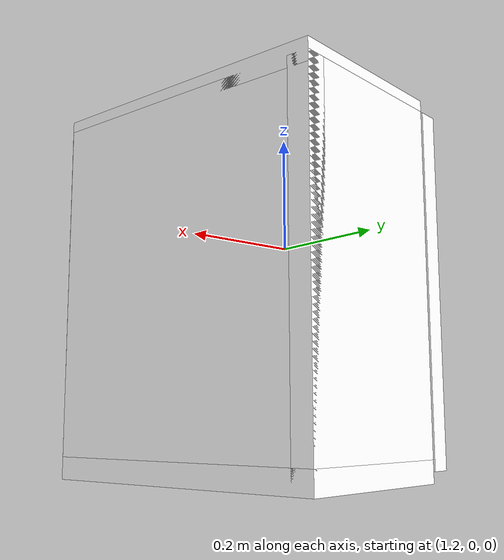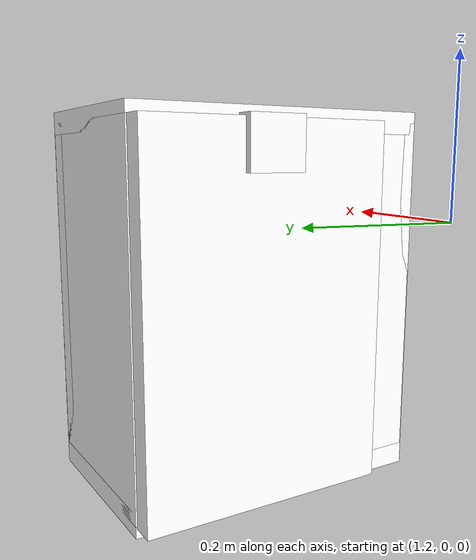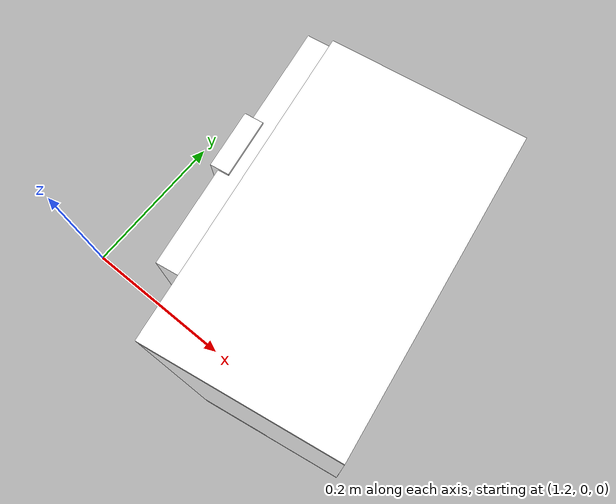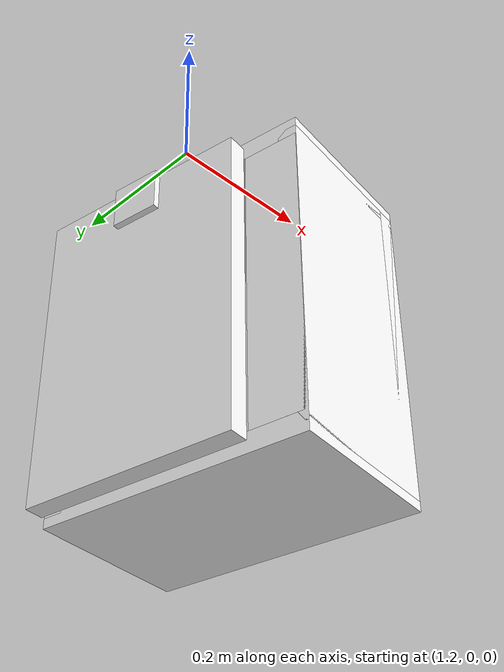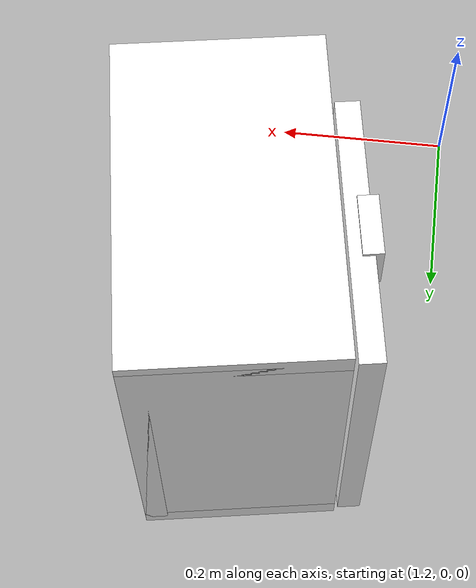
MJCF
<mujoco model="cabinet">
    <compiler angle="radian" eulerseq='zxy' />
    <option gravity = "0 0 0" />
    <option>
        <flag contact = "disable"/>
    </option>
    <statistic	extent="1.0" center="0.0 0.0 0.0"/>
    <visual>
        <map fogstart="3" fogend="5" force="0.1" znear=" 0.100000 " zfar=" 12.000000 "/>
    </visual>
    <size njmax="500" nconmax="100" />
    <actuator>
        <velocity joint="bottom_left_hinge" name="viva_revolution" kv='10'></velocity>
    </actuator>
    <asset>
        <texture builtin="flat" name="tabletex" height="32" width="32" rgb1="1 1 1" type="cube"></texture>
        <texture builtin="flat" name="objtex" height="32" width="32" rgb1="1 1 1" type="cube"></texture>
        <texture builtin="flat" name="handletex" height="32" width="32" rgb1="1 1 1" type="cube"></texture>
        <texture builtin="flat" name="wallpaper" height="32" width="32" rgb1="1 1 1" type="cube"></texture>
        <texture builtin="flat" name="kp" height="32" width="32" rgb1="1 1 1" type="cube"></texture>
        <material name="geomTable" shininess="0.03" specular="0.75" texture="tabletex"></material>
        <material name="geomObj" shininess="0.03" specular="0.75" texture="objtex"></material>
        <material name="geomHandle" shininess="0.03" specular="0.75" texture="handletex"></material>
        <material name="bg" shininess="0.03" specular="0.75" texture="wallpaper"></material>
        <material name="geomKeypad" shininess="0.03" specular="0.75" texture="kp"></material>
    </asset>
    <worldbody>
        <body name="cabinet_bottom" pos= " 1.451911 0.180841 -0.365661 "  quat= " -0.080969 0.000000 0.000000 0.996717" >
            <inertial pos="0 0 0" mass="1" diaginertia="1 1 1" />
            <geom size= " 0.131780 0.217031 0.015430 "  type="box" material="geomObj" name="b"/>
            <body name="cabinet_left" pos= " 0.000000 -0.201601 0.245155 " >
                <inertial pos="0 0 0" mass="1" diaginertia="1 1 1" />
                <geom size= " 0.131780 0.015430 0.245155 "  type="box" material="geomObj" name="c" />
            </body>
            <body name="cabinet_right" pos= " 0.000000 0.201601 0.245155 " >
                <inertial pos="0 0 0" mass="1" diaginertia="1 1 1" />
                <geom size= " 0.131780 0.015430 0.245155 "  type="box" material="geomObj" name="d" />
            </body>
            <body name="cabinet_top" pos= " 0.000000 0.000000 0.490310 " >
                <inertial pos="0 0 0" mass="1" diaginertia="1 1 1" />
                <geom size= " 0.131780 0.217031 0.015430 "  type="box" material="geomObj" name="e"/>
            </body>
            <body name="cabinet_back" pos= " -0.116350 0.000000 0.245155 "  >
                <inertial pos="0 0 0" mass="1" diaginertia="1 1 1" />
                <geom size= " 0.015430 0.217031 0.245155 "  type="box" material="geomObj" name="f" />
            </body>
            <body name="cabinet_keypad" pos= " 0.015430 0.171787 0.245155 " >
                <inertial pos="0 0 0" mass="1" diaginertia="1 1 1" />
                <geom size= " 0.116350 0.044244 0.229725 "  type="box" material="geomKeypad" name="keypizzlemynizzle" />
            </body>
            <body name="cabinet_left_hinge" pos= " 0.131780 -0.044244 0.000000 " >
                <inertial pos= " 0.020000 0.000000 0.245155 "  mass="1" diaginertia="1 1 1" />
                <joint name="bottom_left_hinge" type="hinge" pos="0 0 0" axis="0 1 0" limited="true" range= "0 2.3"  />
                <geom size= " 0.015430 0.172787 0.245155 "  pos= " 0.020000 0.000000 0.245155 "  type="box" material="geomObj" name="g"/>
                <body name="handle_link" pos= " 0.032945 0.000000 0.459450 " >
                    <inertial pos="0 0 0" mass="1" diaginertia="1 1 1" />
                    <geom size= " 0.012691 0.039091 0.034595 "  type="box" material="geomHandle" name="h"/>
                </body>
            </body>
        </body>
        <body name="external_camera_body_0" pos="0.0 0 0.00">
            <camera euler="-1.57 1.57 0.0" fovy=" 54.280851 " name="external_camera_0" pos="0.0 0 0"></camera>
            <inertial pos= " 0.00 0.0 0.000000 " mass="1" diaginertia="1 1 1" />
            <joint name="cam_j" pos="0.0 0 0" axis = "1 0 0" type="free" />
        </body>
    </worldbody>
</mujoco>
